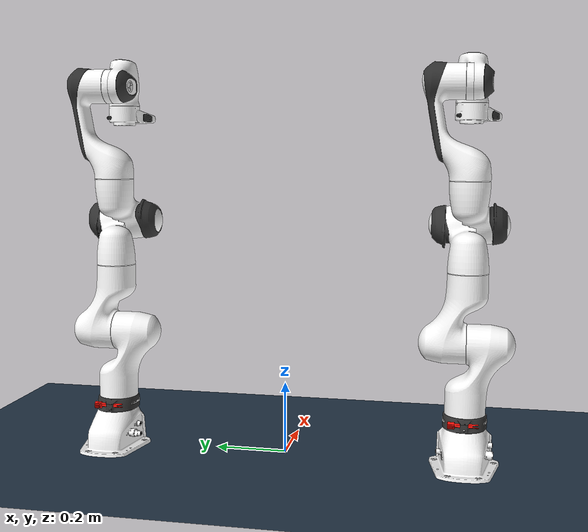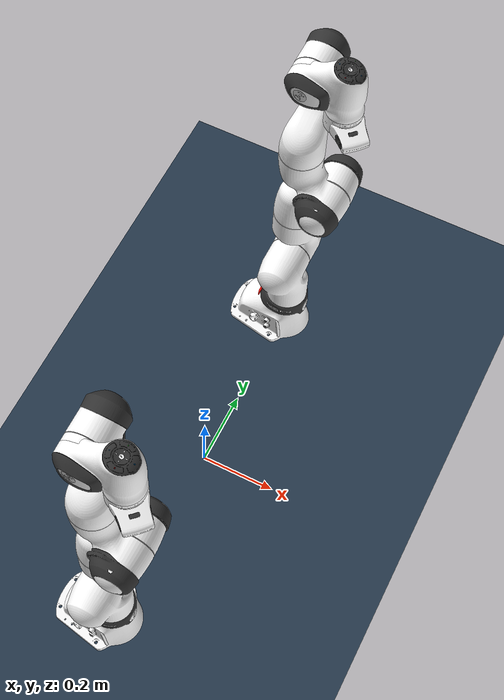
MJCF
<mujoco model="dual_franka">
  <compiler angle="radian" meshdir="/home/xyq/mujoco_sim/models/mujoco_menagerie/franka_fr3/assets"/>

  <option integrator="implicitfast" timestep="0.002">
    <flag gravity="enable"/>
  </option>

  <visual>
    <headlight diffuse="0.6 0.6 0.6" ambient="0.3 0.3 0.3" specular="0 0 0"/>
    <rgba haze="0.15 0.25 0.35 1"/>
    <global azimuth="120" elevation="-20"/>
  </visual>

  <asset>
    <texture type="skybox" builtin="gradient" rgb1="0.3 0.5 0.7" rgb2="0 0 0" width="512" height="512"/>
    <texture name="texplane" type="2d" builtin="checker" rgb1=".2 .3 .4" rgb2=".1 0.15 0.2" width="512" height="512" mark="cross" markrgb=".8 .8 .8"/>
    <material name="matplane" reflectance="0.3" texture="texplane" texrepeat="1 1" texuniform="true"/>

    <!-- Franka materials -->
    <material name="black" rgba=".2 .2 .2 1"/>
    <material name="white" rgba="1 1 1 1"/>
    <material name="red" rgba="1 0.072272 0.039546 1"/>
    <material name="gray" rgba="0.863156 0.863156 0.863157 1"/>
    <material name="button_green" rgba="0.102241 0.571125 0.102242 1"/>
    <material name="button_red" rgba="0.520996 0.008023 0.013702 1"/>
    <material name="button_blue" rgba="0.024157 0.445201 0.737911 1"/>

    <!-- Franka meshes -->
    <mesh file="link0_0.obj"/>
    <mesh file="link0_1.obj"/>
    <mesh file="link0_2.obj"/>
    <mesh file="link0_3.obj"/>
    <mesh file="link0_4.obj"/>
    <mesh file="link0_5.obj"/>
    <mesh file="link0_6.obj"/>
    <mesh file="link1.obj"/>
    <mesh file="link2.obj"/>
    <mesh file="link3_0.obj"/>
    <mesh file="link3_1.obj"/>
    <mesh file="link4_0.obj"/>
    <mesh file="link4_1.obj"/>
    <mesh file="link5_0.obj"/>
    <mesh file="link5_1.obj"/>
    <mesh file="link5_2.obj"/>
    <mesh file="link6_0.obj"/>
    <mesh file="link6_1.obj"/>
    <mesh file="link6_2.obj"/>
    <mesh file="link6_3.obj"/>
    <mesh file="link6_4.obj"/>
    <mesh file="link6_5.obj"/>
    <mesh file="link6_6.obj"/>
    <mesh file="link6_7.obj"/>
    <mesh file="link7_0.obj"/>
    <mesh file="link7_1.obj"/>
    <mesh file="link7_2.obj"/>
    <mesh file="link7_3.obj"/>
    <mesh name="link0_coll" file="link0.stl"/>
    <mesh name="link1_coll" file="link1.stl"/>
    <mesh name="link2_coll" file="link2.stl"/>
    <mesh name="link3_coll" file="link3.stl"/>
    <mesh name="link4_coll" file="link4.stl"/>
    <mesh name="link5_coll" file="link5.stl"/>
    <mesh name="link6_coll" file="link6.stl"/>
    <mesh name="link7_coll" file="link7.stl"/>
  </asset>

  <default>
    <default class="franka">
      <joint damping="0.21" armature="0.195" frictionloss="1.137"/>
      <position inheritrange="1"/>
      <default class="visual">
        <geom type="mesh" group="2" contype="0" conaffinity="0"/>
      </default>
      <default class="collision">
        <geom type="mesh" group="3" mass="0" density="0"/>
      </default>
      <site size="0.001" rgba="0.5 0.5 0.5 0.3" group="4"/>
    </default>
  </default>

  <worldbody>
    <light pos="0 0 3" dir="0 0 -1" directional="true"/>
    <geom name="floor" pos="0 0 0" size="0 0 0.05" type="plane" material="matplane" condim="3"/>

    <!-- Left Franka Arm -->
    <body name="left_base" pos="0 0.5 0" childclass="franka">
      <body name="left_link0">
        <geom mesh="link0_0" material="black" class="visual"/>
        <geom mesh="link0_1" material="white" class="visual"/>
        <geom mesh="link0_2" material="white" class="visual"/>
        <geom mesh="link0_3" material="white" class="visual"/>
        <geom mesh="link0_4" material="white" class="visual"/>
        <geom mesh="link0_5" material="red" class="visual"/>
        <geom mesh="link0_6" material="black" class="visual"/>
        <geom name="left_link0_collision" mesh="link0_coll" class="collision"/>
        <body name="left_link1" pos="0 0 0.333">
          <inertial pos="4.128e-07 -0.0181251 -0.0386036" quat="0.998098 -0.0605364 0.00380499 0.0110109" mass="2.92747"
            diaginertia="0.0239286 0.0227246 0.00610634"/>
          <joint name="left_joint1" axis="0 0 1" range="-2.7437 2.7437" actuatorfrcrange="-87 87"/>
          <geom name="left_link1_collision" class="collision" mesh="link1_coll"/>
          <geom material="white" mesh="link1" class="visual"/>
          <body name="left_link2" quat="1 -1 0 0">
            <inertial pos="0.00318289 -0.0743222 0.00881461" quat="0.502599 0.584437 -0.465998 0.434366" mass="2.93554"
              diaginertia="0.0629567 0.0411924 0.0246371"/>
            <joint name="left_joint2" axis="0 0 1" range="-1.7837 1.7837" actuatorfrcrange="-87 87"/>
            <geom material="white" mesh="link2" class="visual"/>
            <geom name="left_link2_collision" class="collision" mesh="link2_coll"/>
            <body name="left_link3" pos="0 -0.316 0" quat="1 1 0 0">
              <inertial pos="0.0407016 -0.00482006 -0.0289731" quat="0.921025 -0.244161 0.155272 0.260745" mass="2.2449"
                diaginertia="0.0267409 0.0189869 0.0171587"/>
              <joint name="left_joint3" axis="0 0 1" range="-2.9007 2.9007" actuatorfrcrange="-87 87"/>
              <geom mesh="link3_0" material="white" class="visual"/>
              <geom mesh="link3_1" material="black" class="visual"/>
              <geom name="left_link3_collision" class="collision" mesh="link3_coll"/>
              <body name="left_link4" pos="0.0825 0 0" quat="1 1 0 0">
                <inertial pos="-0.0459101 0.0630493 -0.00851879" quat="0.438018 0.803311 0.00937812 0.403414"
                  mass="2.6156" diaginertia="0.05139 0.0372717 0.0160047"/>
                <joint name="left_joint4" axis="0 0 1" range="-3.0421 -0.1518" actuatorfrcrange="-87 87"/>
                <geom mesh="link4_0" material="white" class="visual"/>
                <geom mesh="link4_1" material="black" class="visual"/>
                <geom name="left_link4_collision" class="collision" mesh="link4_coll"/>
                <body name="left_link5" pos="-0.0825 0.384 0" quat="1 -1 0 0">
                  <inertial pos="-0.00160396 0.0292536 -0.0972966" quat="0.919031 0.125604 0.0751531 -0.366003"
                    mass="2.32712" diaginertia="0.0579335 0.0449144 0.0130634"/>
                  <joint name="left_joint5" axis="0 0 1" range="-2.8065 2.8065" actuatorfrcrange="-12 12"
                    armature="0.074" frictionloss="0.763"/>
                  <geom mesh="link5_0" material="white" class="visual"/>
                  <geom mesh="link5_1" material="white" class="visual"/>
                  <geom mesh="link5_2" material="black" class="visual"/>
                  <geom name="left_link5_collision" class="collision" mesh="link5_coll"/>
                  <body name="left_link6" quat="1 1 0 0">
                    <inertial pos="0.0597131 -0.0410295 -0.0101693" quat="0.621301 0.552665 0.510011 0.220081"
                      mass="1.81704" diaginertia="0.0175039 0.0161123 0.00193529"/>
                    <joint name="left_joint6" axis="0 0 1" range="0.5445 4.5169" actuatorfrcrange="-12 12"
                      armature="0.074" frictionloss="0.44"/>
                    <geom mesh="link6_0" material="button_green" class="visual"/>
                    <geom mesh="link6_1" material="white" class="visual"/>
                    <geom mesh="link6_2" material="white" class="visual"/>
                    <geom mesh="link6_3" material="gray" class="visual"/>
                    <geom mesh="link6_4" material="button_red" class="visual"/>
                    <geom mesh="link6_5" material="white" class="visual"/>
                    <geom mesh="link6_6" material="black" class="visual"/>
                    <geom mesh="link6_7" material="button_blue" class="visual"/>
                    <geom name="left_link6_collision" class="collision" mesh="link6_coll"/>
                    <body name="left_link7" pos="0.088 0 0" quat="1 1 0 0">
                      <inertial pos="0.00452258 0.00862619 -0.0161633" quat="0.727579 0.0978688 -0.24906 0.63168"
                        mass="0.627143" diaginertia="0.000223836 0.000223642 5.64132e-07"/>
                      <joint name="left_joint7" axis="0 0 1" range="-3.0159 3.0159" actuatorfrcrange="-12 12"
                        armature="0.074" frictionloss="0.248"/>
                      <geom mesh="link7_0" material="black" class="visual"/>
                      <geom mesh="link7_1" material="white" class="visual"/>
                      <geom mesh="link7_2" material="white" class="visual"/>
                      <geom mesh="link7_3" material="black" class="visual"/>
                      <geom name="left_link7_collision" class="collision" mesh="link7_coll"/>
                      <site name="left_ee_site" pos="0 0 0.107"/>
                    </body>
                  </body>
                </body>
              </body>
            </body>
          </body>
        </body>
      </body>
    </body>

    <!-- Right Franka Arm -->
    <body name="right_base" pos="0 -0.5 0" childclass="franka">
      <body name="right_link0">
        <geom mesh="link0_0" material="black" class="visual"/>
        <geom mesh="link0_1" material="white" class="visual"/>
        <geom mesh="link0_2" material="white" class="visual"/>
        <geom mesh="link0_3" material="white" class="visual"/>
        <geom mesh="link0_4" material="white" class="visual"/>
        <geom mesh="link0_5" material="red" class="visual"/>
        <geom mesh="link0_6" material="black" class="visual"/>
        <geom name="right_link0_collision" mesh="link0_coll" class="collision"/>
        <body name="right_link1" pos="0 0 0.333">
          <inertial pos="4.128e-07 -0.0181251 -0.0386036" quat="0.998098 -0.0605364 0.00380499 0.0110109" mass="2.92747"
            diaginertia="0.0239286 0.0227246 0.00610634"/>
          <joint name="right_joint1" axis="0 0 1" range="-2.7437 2.7437" actuatorfrcrange="-87 87"/>
          <geom name="right_link1_collision" class="collision" mesh="link1_coll"/>
          <geom material="white" mesh="link1" class="visual"/>
          <body name="right_link2" quat="1 -1 0 0">
            <inertial pos="0.00318289 -0.0743222 0.00881461" quat="0.502599 0.584437 -0.465998 0.434366" mass="2.93554"
              diaginertia="0.0629567 0.0411924 0.0246371"/>
            <joint name="right_joint2" axis="0 0 1" range="-1.7837 1.7837" actuatorfrcrange="-87 87"/>
            <geom material="white" mesh="link2" class="visual"/>
            <geom name="right_link2_collision" class="collision" mesh="link2_coll"/>
            <body name="right_link3" pos="0 -0.316 0" quat="1 1 0 0">
              <inertial pos="0.0407016 -0.00482006 -0.0289731" quat="0.921025 -0.244161 0.155272 0.260745" mass="2.2449"
                diaginertia="0.0267409 0.0189869 0.0171587"/>
              <joint name="right_joint3" axis="0 0 1" range="-2.9007 2.9007" actuatorfrcrange="-87 87"/>
              <geom mesh="link3_0" material="white" class="visual"/>
              <geom mesh="link3_1" material="black" class="visual"/>
              <geom name="right_link3_collision" class="collision" mesh="link3_coll"/>
              <body name="right_link4" pos="0.0825 0 0" quat="1 1 0 0">
                <inertial pos="-0.0459101 0.0630493 -0.00851879" quat="0.438018 0.803311 0.00937812 0.403414"
                  mass="2.6156" diaginertia="0.05139 0.0372717 0.0160047"/>
                <joint name="right_joint4" axis="0 0 1" range="-3.0421 -0.1518" actuatorfrcrange="-87 87"/>
                <geom mesh="link4_0" material="white" class="visual"/>
                <geom mesh="link4_1" material="black" class="visual"/>
                <geom name="right_link4_collision" class="collision" mesh="link4_coll"/>
                <body name="right_link5" pos="-0.0825 0.384 0" quat="1 -1 0 0">
                  <inertial pos="-0.00160396 0.0292536 -0.0972966" quat="0.919031 0.125604 0.0751531 -0.366003"
                    mass="2.32712" diaginertia="0.0579335 0.0449144 0.0130634"/>
                  <joint name="right_joint5" axis="0 0 1" range="-2.8065 2.8065" actuatorfrcrange="-12 12"
                    armature="0.074" frictionloss="0.763"/>
                  <geom mesh="link5_0" material="white" class="visual"/>
                  <geom mesh="link5_1" material="white" class="visual"/>
                  <geom mesh="link5_2" material="black" class="visual"/>
                  <geom name="right_link5_collision" class="collision" mesh="link5_coll"/>
                  <body name="right_link6" quat="1 1 0 0">
                    <inertial pos="0.0597131 -0.0410295 -0.0101693" quat="0.621301 0.552665 0.510011 0.220081"
                      mass="1.81704" diaginertia="0.0175039 0.0161123 0.00193529"/>
                    <joint name="right_joint6" axis="0 0 1" range="0.5445 4.5169" actuatorfrcrange="-12 12"
                      armature="0.074" frictionloss="0.44"/>
                    <geom mesh="link6_0" material="button_green" class="visual"/>
                    <geom mesh="link6_1" material="white" class="visual"/>
                    <geom mesh="link6_2" material="white" class="visual"/>
                    <geom mesh="link6_3" material="gray" class="visual"/>
                    <geom mesh="link6_4" material="button_red" class="visual"/>
                    <geom mesh="link6_5" material="white" class="visual"/>
                    <geom mesh="link6_6" material="black" class="visual"/>
                    <geom mesh="link6_7" material="button_blue" class="visual"/>
                    <geom name="right_link6_collision" class="collision" mesh="link6_coll"/>
                    <body name="right_link7" pos="0.088 0 0" quat="1 1 0 0">
                      <inertial pos="0.00452258 0.00862619 -0.0161633" quat="0.727579 0.0978688 -0.24906 0.63168"
                        mass="0.627143" diaginertia="0.000223836 0.000223642 5.64132e-07"/>
                      <joint name="right_joint7" axis="0 0 1" range="-3.0159 3.0159" actuatorfrcrange="-12 12"
                        armature="0.074" frictionloss="0.248"/>
                      <geom mesh="link7_0" material="black" class="visual"/>
                      <geom mesh="link7_1" material="white" class="visual"/>
                      <geom mesh="link7_2" material="white" class="visual"/>
                      <geom mesh="link7_3" material="black" class="visual"/>
                      <geom name="right_link7_collision" class="collision" mesh="link7_coll"/>
                      <site name="right_ee_site" pos="0 0 0.107"/>
                    </body>
                  </body>
                </body>
              </body>
            </body>
          </body>
        </body>
      </body>
    </body>
  </worldbody>

  <actuator>
    <!-- Left arm actuators -->
    <position class="franka" name="left_joint1_actuator" joint="left_joint1" kp="4500" kv="450"/>
    <position class="franka" name="left_joint2_actuator" joint="left_joint2" kp="4500" kv="450"/>
    <position class="franka" name="left_joint3_actuator" joint="left_joint3" kp="3500" kv="350"/>
    <position class="franka" name="left_joint4_actuator" joint="left_joint4" kp="3500" kv="350"/>
    <position class="franka" name="left_joint5_actuator" joint="left_joint5" kp="2000" kv="200"/>
    <position class="franka" name="left_joint6_actuator" joint="left_joint6" kp="2000" kv="200"/>
    <position class="franka" name="left_joint7_actuator" joint="left_joint7" kp="2000" kv="200"/>

    <!-- Right arm actuators -->
    <position class="franka" name="right_joint1_actuator" joint="right_joint1" kp="4500" kv="450"/>
    <position class="franka" name="right_joint2_actuator" joint="right_joint2" kp="4500" kv="450"/>
    <position class="franka" name="right_joint3_actuator" joint="right_joint3" kp="3500" kv="350"/>
    <position class="franka" name="right_joint4_actuator" joint="right_joint4" kp="3500" kv="350"/>
    <position class="franka" name="right_joint5_actuator" joint="right_joint5" kp="2000" kv="200"/>
    <position class="franka" name="right_joint6_actuator" joint="right_joint6" kp="2000" kv="200"/>
    <position class="franka" name="right_joint7_actuator" joint="right_joint7" kp="2000" kv="200"/>
  </actuator>

  <contact>
    <exclude body1="left_link0" body2="left_link1"/>
    <exclude body1="right_link0" body2="right_link1"/>
  </contact>

  <keyframe>
    <key name="home"
         qpos="0 0 0 -1.57079 0 1.57079 -0.7853 0 0 0 -1.57079 0 1.57079 -0.7853"
         ctrl="0 0 0 -1.57079 0 1.57079 -0.7853 0 0 0 -1.57079 0 1.57079 -0.7853"/>
  </keyframe>
</mujoco>
